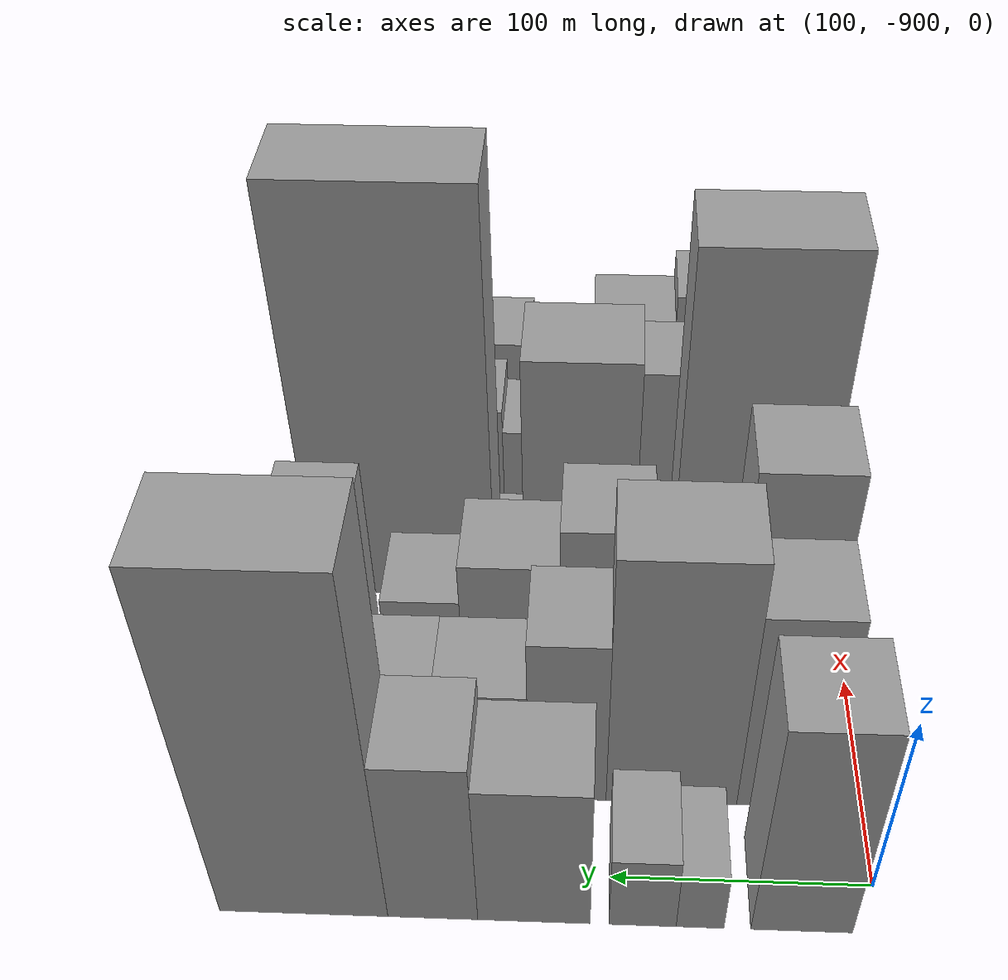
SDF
<sdf version="1.6">
 <world name="default">
  <model name="building_1">
   <static>1</static>
   <pose>100.0000 -871.1596 0 0.000000 0.000000 0.000000</pose>
   <link name="link">
    <pose>0 0 60.00 0 0 0</pose>
    <collision name="collision"><geometry><box><size>40.0000 37.6807 120.0000</size></box></geometry></collision>
    <visual name="visual">
     <cast_shadows>0</cast_shadows>
     <geometry><box><size>40.0000 37.6807 120.0000</size></box></geometry>
     <material>
      <script>
       <uri>model://grey_wall/materials/scripts</uri>
       <uri>model://grey_wall/materials/textures</uri>
       <name>vrc/grey_wall</name>
      </script>
     </material>
    </visual>
   </link>
  </model>
  <model name="building_2">
   <static>1</static>
   <pose>100.0000 -833.4585 0 0.000000 0.000000 0.000000</pose>
   <link name="link">
    <pose>0 0 16.50 0 0 0</pose>
    <collision name="collision"><geometry><box><size>40.0000 17.7216 33.0000</size></box></geometry></collision>
    <visual name="visual">
     <cast_shadows>0</cast_shadows>
     <geometry><box><size>40.0000 17.7216 33.0000</size></box></geometry>
     <material>
      <script>
       <uri>model://grey_wall/materials/scripts</uri>
       <uri>model://grey_wall/materials/textures</uri>
       <name>vrc/grey_wall</name>
      </script>
     </material>
    </visual>
   </link>
  </model>
  <model name="building_3">
   <static>1</static>
   <pose>100.0000 -812.0558 0 0.000000 0.000000 0.000000</pose>
   <link name="link">
    <pose>0 0 21.00 0 0 0</pose>
    <collision name="collision"><geometry><box><size>40.0000 25.0839 42.0000</size></box></geometry></collision>
    <visual name="visual">
     <cast_shadows>0</cast_shadows>
     <geometry><box><size>40.0000 25.0839 42.0000</size></box></geometry>
     <material>
      <script>
       <uri>model://grey_wall/materials/scripts</uri>
       <uri>model://grey_wall/materials/textures</uri>
       <name>vrc/grey_wall</name>
      </script>
     </material>
    </visual>
   </link>
  </model>
  <model name="building_4">
   <static>1</static>
   <pose>100.0000 -771.5161 0 0.000000 0.000000 0.000000</pose>
   <link name="link">
    <pose>0 0 40.50 0 0 0</pose>
    <collision name="collision"><geometry><box><size>40.0000 41.9954 81.0000</size></box></geometry></collision>
    <visual name="visual">
     <cast_shadows>0</cast_shadows>
     <geometry><box><size>40.0000 41.9954 81.0000</size></box></geometry>
     <material>
      <script>
       <uri>model://grey_wall/materials/scripts</uri>
       <uri>model://grey_wall/materials/textures</uri>
       <name>vrc/grey_wall</name>
      </script>
     </material>
    </visual>
   </link>
  </model>
  <model name="building_5">
   <static>1</static>
   <pose>100.0000 -733.6429 0 0.000000 0.000000 0.000000</pose>
   <link name="link">
    <pose>0 0 46.50 0 0 0</pose>
    <collision name="collision"><geometry><box><size>40.0000 33.7510 93.0000</size></box></geometry></collision>
    <visual name="visual">
     <cast_shadows>0</cast_shadows>
     <geometry><box><size>40.0000 33.7510 93.0000</size></box></geometry>
     <material>
      <script>
       <uri>model://grey_wall/materials/scripts</uri>
       <uri>model://grey_wall/materials/textures</uri>
       <name>vrc/grey_wall</name>
      </script>
     </material>
    </visual>
   </link>
  </model>
  <model name="building_6">
   <static>1</static>
   <pose>100.0000 -685.0312 0 0.000000 0.000000 0.000000</pose>
   <link name="link">
    <pose>0 0 93.00 0 0 0</pose>
    <collision name="collision"><geometry><box><size>40.0000 63.4724 186.0000</size></box></geometry></collision>
    <visual name="visual">
     <cast_shadows>0</cast_shadows>
     <geometry><box><size>40.0000 63.4724 186.0000</size></box></geometry>
     <material>
      <script>
       <uri>model://grey_wall/materials/scripts</uri>
       <uri>model://grey_wall/materials/textures</uri>
       <name>vrc/grey_wall</name>
      </script>
     </material>
    </visual>
   </link>
  </model>
  <model name="building_52">
   <static>1</static>
   <pose>155.0000 -868.0021 0 0.000000 0.000000 0.000000</pose>
   <link name="link">
    <pose>0 0 55.50 0 0 0</pose>
    <collision name="collision"><geometry><box><size>40.0000 35.9958 111.0000</size></box></geometry></collision>
    <visual name="visual">
     <cast_shadows>0</cast_shadows>
     <geometry><box><size>40.0000 35.9958 111.0000</size></box></geometry>
     <material>
      <script>
       <uri>model://grey_wall/materials/scripts</uri>
       <uri>model://grey_wall/materials/textures</uri>
       <name>vrc/grey_wall</name>
      </script>
     </material>
    </visual>
   </link>
  </model>
  <model name="building_53">
   <static>1</static>
   <pose>155.0000 -823.8686 0 0.000000 0.000000 0.000000</pose>
   <link name="link">
    <pose>0 0 69.00 0 0 0</pose>
    <collision name="collision"><geometry><box><size>40.0000 52.2713 138.0000</size></box></geometry></collision>
    <visual name="visual">
     <cast_shadows>0</cast_shadows>
     <geometry><box><size>40.0000 52.2713 138.0000</size></box></geometry>
     <material>
      <script>
       <uri>model://grey_wall/materials/scripts</uri>
       <uri>model://grey_wall/materials/textures</uri>
       <name>vrc/grey_wall</name>
      </script>
     </material>
    </visual>
   </link>
  </model>
  <model name="building_54">
   <static>1</static>
   <pose>155.0000 -782.2657 0 0.000000 0.000000 0.000000</pose>
   <link name="link">
    <pose>0 0 46.50 0 0 0</pose>
    <collision name="collision"><geometry><box><size>40.0000 30.9345 93.0000</size></box></geometry></collision>
    <visual name="visual">
     <cast_shadows>0</cast_shadows>
     <geometry><box><size>40.0000 30.9345 93.0000</size></box></geometry>
     <material>
      <script>
       <uri>model://grey_wall/materials/scripts</uri>
       <uri>model://grey_wall/materials/textures</uri>
       <name>vrc/grey_wall</name>
      </script>
     </material>
    </visual>
   </link>
  </model>
  <model name="building_55">
   <static>1</static>
   <pose>155.0000 -748.6677 0 0.000000 0.000000 0.000000</pose>
   <link name="link">
    <pose>0 0 31.50 0 0 0</pose>
    <collision name="collision"><geometry><box><size>40.0000 36.2615 63.0000</size></box></geometry></collision>
    <visual name="visual">
     <cast_shadows>0</cast_shadows>
     <geometry><box><size>40.0000 36.2615 63.0000</size></box></geometry>
     <material>
      <script>
       <uri>model://grey_wall/materials/scripts</uri>
       <uri>model://grey_wall/materials/textures</uri>
       <name>vrc/grey_wall</name>
      </script>
     </material>
    </visual>
   </link>
  </model>
  <model name="building_56">
   <static>1</static>
   <pose>155.0000 -712.0140 0 0.000000 0.000000 0.000000</pose>
   <link name="link">
    <pose>0 0 31.50 0 0 0</pose>
    <collision name="collision"><geometry><box><size>40.0000 37.0459 63.0000</size></box></geometry></collision>
    <visual name="visual">
     <cast_shadows>0</cast_shadows>
     <geometry><box><size>40.0000 37.0459 63.0000</size></box></geometry>
     <material>
      <script>
       <uri>model://grey_wall/materials/scripts</uri>
       <uri>model://grey_wall/materials/textures</uri>
       <name>vrc/grey_wall</name>
      </script>
     </material>
    </visual>
   </link>
  </model>
  <model name="building_57">
   <static>1</static>
   <pose>155.0000 -679.3171 0 0.000000 0.000000 0.000000</pose>
   <link name="link">
    <pose>0 0 24.00 0 0 0</pose>
    <collision name="collision"><geometry><box><size>40.0000 28.3479 48.0000</size></box></geometry></collision>
    <visual name="visual">
     <cast_shadows>0</cast_shadows>
     <geometry><box><size>40.0000 28.3479 48.0000</size></box></geometry>
     <material>
      <script>
       <uri>model://grey_wall/materials/scripts</uri>
       <uri>model://grey_wall/materials/textures</uri>
       <name>vrc/grey_wall</name>
      </script>
     </material>
    </visual>
   </link>
  </model>
  <model name="building_102">
   <static>1</static>
   <pose>210.0000 -869.7920 0 0.000000 0.000000 0.000000</pose>
   <link name="link">
    <pose>0 0 64.50 0 0 0</pose>
    <collision name="collision"><geometry><box><size>40.0000 40.4159 129.0000</size></box></geometry></collision>
    <visual name="visual">
     <cast_shadows>0</cast_shadows>
     <geometry><box><size>40.0000 40.4159 129.0000</size></box></geometry>
     <material>
      <script>
       <uri>model://grey_wall/materials/scripts</uri>
       <uri>model://grey_wall/materials/textures</uri>
       <name>vrc/grey_wall</name>
      </script>
     </material>
    </visual>
   </link>
  </model>
  <model name="building_103">
   <static>1</static>
   <pose>210.0000 -832.0099 0 0.000000 0.000000 0.000000</pose>
   <link name="link">
    <pose>0 0 30.00 0 0 0</pose>
    <collision name="collision"><geometry><box><size>40.0000 35.1484 60.0000</size></box></geometry></collision>
    <visual name="visual">
     <cast_shadows>0</cast_shadows>
     <geometry><box><size>40.0000 35.1484 60.0000</size></box></geometry>
     <material>
      <script>
       <uri>model://grey_wall/materials/scripts</uri>
       <uri>model://grey_wall/materials/textures</uri>
       <name>vrc/grey_wall</name>
      </script>
     </material>
    </visual>
   </link>
  </model>
  <model name="building_104">
   <static>1</static>
   <pose>210.0000 -795.7693 0 0.000000 0.000000 0.000000</pose>
   <link name="link">
    <pose>0 0 48.00 0 0 0</pose>
    <collision name="collision"><geometry><box><size>40.0000 37.3328 96.0000</size></box></geometry></collision>
    <visual name="visual">
     <cast_shadows>0</cast_shadows>
     <geometry><box><size>40.0000 37.3328 96.0000</size></box></geometry>
     <material>
      <script>
       <uri>model://grey_wall/materials/scripts</uri>
       <uri>model://grey_wall/materials/textures</uri>
       <name>vrc/grey_wall</name>
      </script>
     </material>
    </visual>
   </link>
  </model>
  <model name="building_105">
   <static>1</static>
   <pose>210.0000 -756.6601 0 0.000000 0.000000 0.000000</pose>
   <link name="link">
    <pose>0 0 37.50 0 0 0</pose>
    <collision name="collision"><geometry><box><size>40.0000 40.8856 75.0000</size></box></geometry></collision>
    <visual name="visual">
     <cast_shadows>0</cast_shadows>
     <geometry><box><size>40.0000 40.8856 75.0000</size></box></geometry>
     <material>
      <script>
       <uri>model://grey_wall/materials/scripts</uri>
       <uri>model://grey_wall/materials/textures</uri>
       <name>vrc/grey_wall</name>
      </script>
     </material>
    </visual>
   </link>
  </model>
  <model name="building_106">
   <static>1</static>
   <pose>210.0000 -720.0202 0 0.000000 0.000000 0.000000</pose>
   <link name="link">
    <pose>0 0 27.00 0 0 0</pose>
    <collision name="collision"><geometry><box><size>40.0000 32.3942 54.0000</size></box></geometry></collision>
    <visual name="visual">
     <cast_shadows>0</cast_shadows>
     <geometry><box><size>40.0000 32.3942 54.0000</size></box></geometry>
     <material>
      <script>
       <uri>model://grey_wall/materials/scripts</uri>
       <uri>model://grey_wall/materials/textures</uri>
       <name>vrc/grey_wall</name>
      </script>
     </material>
    </visual>
   </link>
  </model>
  <model name="building_107">
   <static>1</static>
   <pose>210.0000 -676.7951 0 0.000000 0.000000 0.000000</pose>
   <link name="link">
    <pose>0 0 46.50 0 0 0</pose>
    <collision name="collision"><geometry><box><size>40.0000 34.0562 93.0000</size></box></geometry></collision>
    <visual name="visual">
     <cast_shadows>0</cast_shadows>
     <geometry><box><size>40.0000 34.0562 93.0000</size></box></geometry>
     <material>
      <script>
       <uri>model://grey_wall/materials/scripts</uri>
       <uri>model://grey_wall/materials/textures</uri>
       <name>vrc/grey_wall</name>
      </script>
     </material>
    </visual>
   </link>
  </model>
  <model name="building_152">
   <static>1</static>
   <pose>265.0000 -857.5514 0 0.000000 0.000000 0.000000</pose>
   <link name="link">
    <pose>0 0 94.50 0 0 0</pose>
    <collision name="collision"><geometry><box><size>40.0000 64.8972 189.0000</size></box></geometry></collision>
    <visual name="visual">
     <cast_shadows>0</cast_shadows>
     <geometry><box><size>40.0000 64.8972 189.0000</size></box></geometry>
     <material>
      <script>
       <uri>model://grey_wall/materials/scripts</uri>
       <uri>model://grey_wall/materials/textures</uri>
       <name>vrc/grey_wall</name>
      </script>
     </material>
    </visual>
   </link>
  </model>
  <model name="building_153">
   <static>1</static>
   <pose>265.0000 -812.6289 0 0.000000 0.000000 0.000000</pose>
   <link name="link">
    <pose>0 0 10.50 0 0 0</pose>
    <collision name="collision"><geometry><box><size>40.0000 8.9478 21.0000</size></box></geometry></collision>
    <visual name="visual">
     <cast_shadows>0</cast_shadows>
     <geometry><box><size>40.0000 8.9478 21.0000</size></box></geometry>
     <material>
      <script>
       <uri>model://grey_wall/materials/scripts</uri>
       <uri>model://grey_wall/materials/textures</uri>
       <name>vrc/grey_wall</name>
      </script>
     </material>
    </visual>
   </link>
  </model>
  <model name="building_154">
   <static>1</static>
   <pose>265.0000 -783.6729 0 0.000000 0.000000 0.000000</pose>
   <link name="link">
    <pose>0 0 67.50 0 0 0</pose>
    <collision name="collision"><geometry><box><size>40.0000 48.9642 135.0000</size></box></geometry></collision>
    <visual name="visual">
     <cast_shadows>0</cast_shadows>
     <geometry><box><size>40.0000 48.9642 135.0000</size></box></geometry>
     <material>
      <script>
       <uri>model://grey_wall/materials/scripts</uri>
       <uri>model://grey_wall/materials/textures</uri>
       <name>vrc/grey_wall</name>
      </script>
     </material>
    </visual>
   </link>
  </model>
  <model name="building_155">
   <static>1</static>
   <pose>265.0000 -752.5032 0 0.000000 0.000000 0.000000</pose>
   <link name="link">
    <pose>0 0 13.50 0 0 0</pose>
    <collision name="collision"><geometry><box><size>40.0000 13.3753 27.0000</size></box></geometry></collision>
    <visual name="visual">
     <cast_shadows>0</cast_shadows>
     <geometry><box><size>40.0000 13.3753 27.0000</size></box></geometry>
     <material>
      <script>
       <uri>model://grey_wall/materials/scripts</uri>
       <uri>model://grey_wall/materials/textures</uri>
       <name>vrc/grey_wall</name>
      </script>
     </material>
    </visual>
   </link>
  </model>
  <model name="building_156">
   <static>1</static>
   <pose>265.0000 -704.7738 0 0.000000 0.000000 0.000000</pose>
   <link name="link">
    <pose>0 0 106.50 0 0 0</pose>
    <collision name="collision"><geometry><box><size>40.0000 82.0834 213.0000</size></box></geometry></collision>
    <visual name="visual">
     <cast_shadows>0</cast_shadows>
     <geometry><box><size>40.0000 82.0834 213.0000</size></box></geometry>
     <material>
      <script>
       <uri>model://grey_wall/materials/scripts</uri>
       <uri>model://grey_wall/materials/textures</uri>
       <name>vrc/grey_wall</name>
      </script>
     </material>
    </visual>
   </link>
  </model>
  <model name="building_202">
   <static>1</static>
   <pose>320.0000 -861.8088 0 0.000000 0.000000 0.000000</pose>
   <link name="link">
    <pose>0 0 39.00 0 0 0</pose>
    <collision name="collision"><geometry><box><size>40.0000 44.3825 78.0000</size></box></geometry></collision>
    <visual name="visual">
     <cast_shadows>0</cast_shadows>
     <geometry><box><size>40.0000 44.3825 78.0000</size></box></geometry>
     <material>
      <script>
       <uri>model://grey_wall/materials/scripts</uri>
       <uri>model://grey_wall/materials/textures</uri>
       <name>vrc/grey_wall</name>
      </script>
     </material>
    </visual>
   </link>
  </model>
  <model name="building_203">
   <static>1</static>
   <pose>320.0000 -816.8881 0 0.000000 0.000000 0.000000</pose>
   <link name="link">
    <pose>0 0 43.50 0 0 0</pose>
    <collision name="collision"><geometry><box><size>40.0000 45.4590 87.0000</size></box></geometry></collision>
    <visual name="visual">
     <cast_shadows>0</cast_shadows>
     <geometry><box><size>40.0000 45.4590 87.0000</size></box></geometry>
     <material>
      <script>
       <uri>model://grey_wall/materials/scripts</uri>
       <uri>model://grey_wall/materials/textures</uri>
       <name>vrc/grey_wall</name>
      </script>
     </material>
    </visual>
   </link>
  </model>
  <model name="building_204">
   <static>1</static>
   <pose>320.0000 -783.3394 0 0.000000 0.000000 0.000000</pose>
   <link name="link">
    <pose>0 0 19.50 0 0 0</pose>
    <collision name="collision"><geometry><box><size>40.0000 21.6383 39.0000</size></box></geometry></collision>
    <visual name="visual">
     <cast_shadows>0</cast_shadows>
     <geometry><box><size>40.0000 21.6383 39.0000</size></box></geometry>
     <material>
      <script>
       <uri>model://grey_wall/materials/scripts</uri>
       <uri>model://grey_wall/materials/textures</uri>
       <name>vrc/grey_wall</name>
      </script>
     </material>
    </visual>
   </link>
  </model>
  <model name="building_205">
   <static>1</static>
   <pose>320.0000 -759.5103 0 0.000000 0.000000 0.000000</pose>
   <link name="link">
    <pose>0 0 25.50 0 0 0</pose>
    <collision name="collision"><geometry><box><size>40.0000 26.0199 51.0000</size></box></geometry></collision>
    <visual name="visual">
     <cast_shadows>0</cast_shadows>
     <geometry><box><size>40.0000 26.0199 51.0000</size></box></geometry>
     <material>
      <script>
       <uri>model://grey_wall/materials/scripts</uri>
       <uri>model://grey_wall/materials/textures</uri>
       <name>vrc/grey_wall</name>
      </script>
     </material>
    </visual>
   </link>
  </model>
  <model name="building_206">
   <static>1</static>
   <pose>320.0000 -728.5249 0 0.000000 0.000000 0.000000</pose>
   <link name="link">
    <pose>0 0 31.50 0 0 0</pose>
    <collision name="collision"><geometry><box><size>40.0000 35.9509 63.0000</size></box></geometry></collision>
    <visual name="visual">
     <cast_shadows>0</cast_shadows>
     <geometry><box><size>40.0000 35.9509 63.0000</size></box></geometry>
     <material>
      <script>
       <uri>model://grey_wall/materials/scripts</uri>
       <uri>model://grey_wall/materials/textures</uri>
       <name>vrc/grey_wall</name>
      </script>
     </material>
    </visual>
   </link>
  </model>
  <model name="building_207">
   <static>1</static>
   <pose>320.0000 -699.4796 0 0.000000 0.000000 0.000000</pose>
   <link name="link">
    <pose>0 0 10.50 0 0 0</pose>
    <collision name="collision"><geometry><box><size>40.0000 10.1396 21.0000</size></box></geometry></collision>
    <visual name="visual">
     <cast_shadows>0</cast_shadows>
     <geometry><box><size>40.0000 10.1396 21.0000</size></box></geometry>
     <material>
      <script>
       <uri>model://grey_wall/materials/scripts</uri>
       <uri>model://grey_wall/materials/textures</uri>
       <name>vrc/grey_wall</name>
      </script>
     </material>
    </visual>
   </link>
  </model>
  <model name="building_208">
   <static>1</static>
   <pose>320.0000 -685.7355 0 0.000000 0.000000 0.000000</pose>
   <link name="link">
    <pose>0 0 16.50 0 0 0</pose>
    <collision name="collision"><geometry><box><size>40.0000 17.3486 33.0000</size></box></geometry></collision>
    <visual name="visual">
     <cast_shadows>0</cast_shadows>
     <geometry><box><size>40.0000 17.3486 33.0000</size></box></geometry>
     <material>
      <script>
       <uri>model://grey_wall/materials/scripts</uri>
       <uri>model://grey_wall/materials/textures</uri>
       <name>vrc/grey_wall</name>
      </script>
     </material>
    </visual>
   </link>
  </model>
  <model name="building_249">
   <static>1</static>
   <pose>375.0000 -884.1883 0 0.000000 0.000000 0.000000</pose>
   <link name="link">
    <pose>0 0 12.00 0 0 0</pose>
    <collision name="collision"><geometry><box><size>40.0000 11.6235 24.0000</size></box></geometry></collision>
    <visual name="visual">
     <cast_shadows>0</cast_shadows>
     <geometry><box><size>40.0000 11.6235 24.0000</size></box></geometry>
     <material>
      <script>
       <uri>model://grey_wall/materials/scripts</uri>
       <uri>model://grey_wall/materials/textures</uri>
       <name>vrc/grey_wall</name>
      </script>
     </material>
    </visual>
   </link>
  </model>
  <model name="building_250">
   <static>1</static>
   <pose>375.0000 -852.4729 0 0.000000 0.000000 0.000000</pose>
   <link name="link">
    <pose>0 0 45.00 0 0 0</pose>
    <collision name="collision"><geometry><box><size>40.0000 51.8073 90.0000</size></box></geometry></collision>
    <visual name="visual">
     <cast_shadows>0</cast_shadows>
     <geometry><box><size>40.0000 51.8073 90.0000</size></box></geometry>
     <material>
      <script>
       <uri>model://grey_wall/materials/scripts</uri>
       <uri>model://grey_wall/materials/textures</uri>
       <name>vrc/grey_wall</name>
      </script>
     </material>
    </visual>
   </link>
  </model>
  <model name="building_251">
   <static>1</static>
   <pose>375.0000 -806.9742 0 0.000000 0.000000 0.000000</pose>
   <link name="link">
    <pose>0 0 37.50 0 0 0</pose>
    <collision name="collision"><geometry><box><size>40.0000 39.1900 75.0000</size></box></geometry></collision>
    <visual name="visual">
     <cast_shadows>0</cast_shadows>
     <geometry><box><size>40.0000 39.1900 75.0000</size></box></geometry>
     <material>
      <script>
       <uri>model://grey_wall/materials/scripts</uri>
       <uri>model://grey_wall/materials/textures</uri>
       <name>vrc/grey_wall</name>
      </script>
     </material>
    </visual>
   </link>
  </model>
  <model name="building_252">
   <static>1</static>
   <pose>375.0000 -777.0604 0 0.000000 0.000000 0.000000</pose>
   <link name="link">
    <pose>0 0 19.50 0 0 0</pose>
    <collision name="collision"><geometry><box><size>40.0000 20.6376 39.0000</size></box></geometry></collision>
    <visual name="visual">
     <cast_shadows>0</cast_shadows>
     <geometry><box><size>40.0000 20.6376 39.0000</size></box></geometry>
     <material>
      <script>
       <uri>model://grey_wall/materials/scripts</uri>
       <uri>model://grey_wall/materials/textures</uri>
       <name>vrc/grey_wall</name>
      </script>
     </material>
    </visual>
   </link>
  </model>
  <model name="building_253">
   <static>1</static>
   <pose>375.0000 -741.4803 0 0.000000 0.000000 0.000000</pose>
   <link name="link">
    <pose>0 0 30.00 0 0 0</pose>
    <collision name="collision"><geometry><box><size>40.0000 30.5226 60.0000</size></box></geometry></collision>
    <visual name="visual">
     <cast_shadows>0</cast_shadows>
     <geometry><box><size>40.0000 30.5226 60.0000</size></box></geometry>
     <material>
      <script>
       <uri>model://grey_wall/materials/scripts</uri>
       <uri>model://grey_wall/materials/textures</uri>
       <name>vrc/grey_wall</name>
      </script>
     </material>
    </visual>
   </link>
  </model>
  <model name="building_254">
   <static>1</static>
   <pose>375.0000 -705.9548 0 0.000000 0.000000 0.000000</pose>
   <link name="link">
    <pose>0 0 34.50 0 0 0</pose>
    <collision name="collision"><geometry><box><size>40.0000 34.5284 69.0000</size></box></geometry></collision>
    <visual name="visual">
     <cast_shadows>0</cast_shadows>
     <geometry><box><size>40.0000 34.5284 69.0000</size></box></geometry>
     <material>
      <script>
       <uri>model://grey_wall/materials/scripts</uri>
       <uri>model://grey_wall/materials/textures</uri>
       <name>vrc/grey_wall</name>
      </script>
     </material>
    </visual>
   </link>
  </model>
  <model name="building_255">
   <static>1</static>
   <pose>375.0000 -674.0877 0 0.000000 0.000000 0.000000</pose>
   <link name="link">
    <pose>0 0 27.00 0 0 0</pose>
    <collision name="collision"><geometry><box><size>40.0000 29.2058 54.0000</size></box></geometry></collision>
    <visual name="visual">
     <cast_shadows>0</cast_shadows>
     <geometry><box><size>40.0000 29.2058 54.0000</size></box></geometry>
     <material>
      <script>
       <uri>model://grey_wall/materials/scripts</uri>
       <uri>model://grey_wall/materials/textures</uri>
       <name>vrc/grey_wall</name>
      </script>
     </material>
    </visual>
   </link>
  </model>
 </world>
</sdf>
